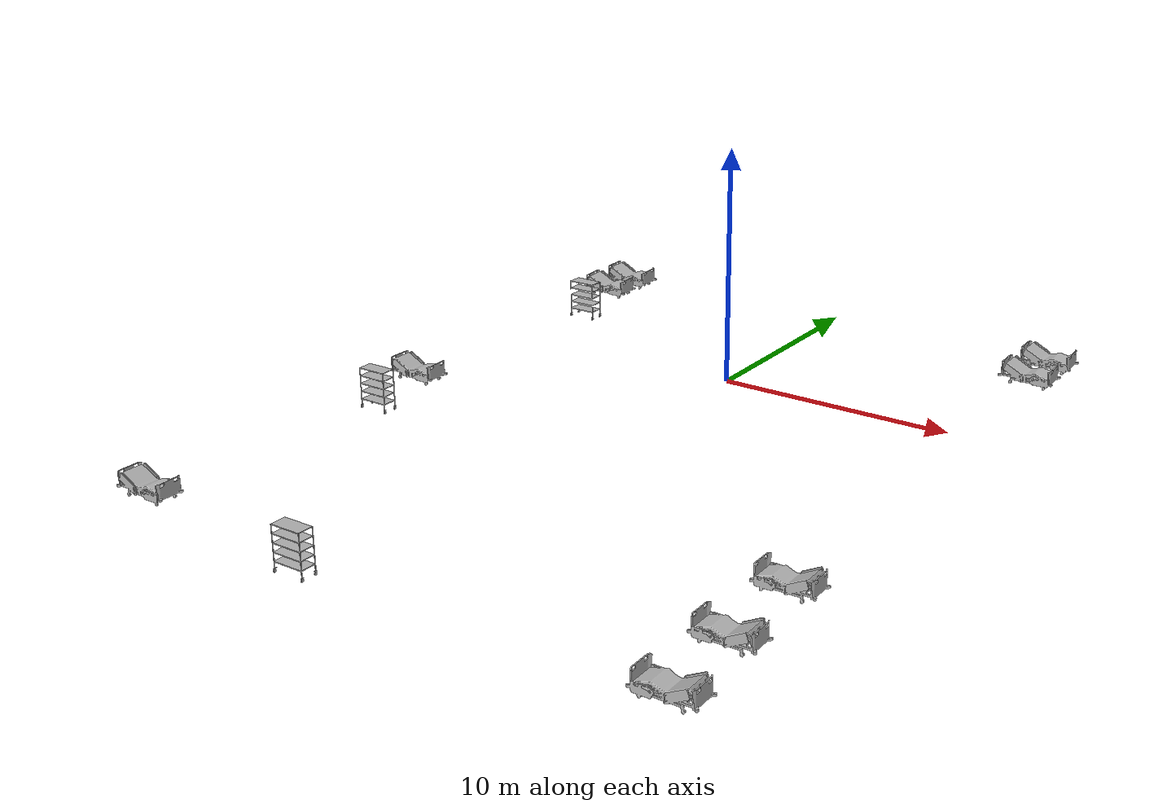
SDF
<sdf version="1.7">
 <world name="world">
  <gravity>0 0 -9.8</gravity>
  <physics name="default_physics" default="0" type="ode">
   <max_step_size>0.001</max_step_size>
   <real_time_factor>1</real_time_factor>
   <real_time_update_rate>1000</real_time_update_rate>
  </physics>
  <model name="CGMClassic_1">
   <frame name="CGMClassic::__model__" attached_to="CGMClassic::body">
    <pose relative_to="__model__">0 0 0 0 -0 0</pose>
   </frame>
   <static>1</static>
   <link name="CGMClassic::body">
    <pose relative_to="CGMClassic::__model__">0 0 0 0 -0 0</pose>
    <visual name="visual">
     <geometry>
      <mesh><uri>model://CGMClassic/meshes/CGMClassic.obj</uri><scale>0.01 0.01 0.01</scale></mesh>
     </geometry>
    </visual>
    <collision name="collision">
     <geometry>
      <mesh><uri>model://CGMClassic/meshes/CGMClassic.obj</uri><scale>0.01 0.01 0.01</scale></mesh>
     </geometry>
    </collision>
   </link>
   <pose>11.1777 -18.4129 0 0 0 -1.5656</pose>
  </model>
  <model name="CGMClassic_2">
   <frame name="CGMClassic::__model__" attached_to="CGMClassic::body">
    <pose relative_to="__model__">0 0 0 0 -0 0</pose>
   </frame>
   <static>1</static>
   <link name="CGMClassic::body">
    <pose relative_to="CGMClassic::__model__">0 0 0 0 -0 0</pose>
    <visual name="visual">
     <geometry>
      <mesh><uri>model://CGMClassic/meshes/CGMClassic.obj</uri><scale>0.01 0.01 0.01</scale></mesh>
     </geometry>
    </visual>
    <collision name="collision">
     <geometry>
      <mesh><uri>model://CGMClassic/meshes/CGMClassic.obj</uri><scale>0.01 0.01 0.01</scale></mesh>
     </geometry>
    </collision>
   </link>
   <pose>11.1179 -14.6493 0 0 0 -1.5656</pose>
  </model>
  <model name="CGMClassic_3">
   <frame name="CGMClassic::__model__" attached_to="CGMClassic::body">
    <pose relative_to="__model__">0 0 0 0 -0 0</pose>
   </frame>
   <static>1</static>
   <link name="CGMClassic::body">
    <pose relative_to="CGMClassic::__model__">0 0 0 0 -0 0</pose>
    <visual name="visual">
     <geometry>
      <mesh><uri>model://CGMClassic/meshes/CGMClassic.obj</uri><scale>0.01 0.01 0.01</scale></mesh>
     </geometry>
    </visual>
    <collision name="collision">
     <geometry>
      <mesh><uri>model://CGMClassic/meshes/CGMClassic.obj</uri><scale>0.01 0.01 0.01</scale></mesh>
     </geometry>
    </collision>
   </link>
   <pose>-11.2304 -21.1134 0 0 -0 1.56641</pose>
  </model>
  <model name="CGMClassic_4">
   <frame name="CGMClassic::__model__" attached_to="CGMClassic::body">
    <pose relative_to="__model__">0 0 0 0 -0 0</pose>
   </frame>
   <static>1</static>
   <link name="CGMClassic::body">
    <pose relative_to="CGMClassic::__model__">0 0 0 0 -0 0</pose>
    <visual name="visual">
     <geometry>
      <mesh><uri>model://CGMClassic/meshes/CGMClassic.obj</uri><scale>0.01 0.01 0.01</scale></mesh>
     </geometry>
    </visual>
    <collision name="collision">
     <geometry>
      <mesh><uri>model://CGMClassic/meshes/CGMClassic.obj</uri><scale>0.01 0.01 0.01</scale></mesh>
     </geometry>
    </collision>
   </link>
   <pose>-11.0878 -7.00992 0 0 -0 1.56296</pose>
  </model>
  <model name="CGMClassic_5">
   <frame name="CGMClassic::__model__" attached_to="CGMClassic::body">
    <pose relative_to="__model__">0 0 0 0 -0 0</pose>
   </frame>
   <static>1</static>
   <link name="CGMClassic::body">
    <pose relative_to="CGMClassic::__model__">0 0 0 0 -0 0</pose>
    <visual name="visual">
     <geometry>
      <mesh><uri>model://CGMClassic/meshes/CGMClassic.obj</uri><scale>0.01 0.01 0.01</scale></mesh>
     </geometry>
    </visual>
    <collision name="collision">
     <geometry>
      <mesh><uri>model://CGMClassic/meshes/CGMClassic.obj</uri><scale>0.01 0.01 0.01</scale></mesh>
     </geometry>
    </collision>
   </link>
   <pose>-11.0106 8.9505 -0.008203 0.0004 -0.035019 1.56285</pose>
  </model>
  <model name="CGMClassic_6">
   <frame name="CGMClassic::__model__" attached_to="CGMClassic::body">
    <pose relative_to="__model__">0 0 0 0 -0 0</pose>
   </frame>
   <static>1</static>
   <link name="CGMClassic::body">
    <pose relative_to="CGMClassic::__model__">0 0 0 0 -0 0</pose>
    <visual name="visual">
     <geometry>
      <mesh><uri>model://CGMClassic/meshes/CGMClassic.obj</uri><scale>0.01 0.01 0.01</scale></mesh>
     </geometry>
    </visual>
    <collision name="collision">
     <geometry>
      <mesh><uri>model://CGMClassic/meshes/CGMClassic.obj</uri><scale>0.01 0.01 0.01</scale></mesh>
     </geometry>
    </collision>
   </link>
   <pose>-11.025 7.10335 0 0 -0.035021 1.57427</pose>
  </model>
  <model name="StorageRack_2">
   <frame name="StorageRack::__model__" attached_to="StorageRack::link">
    <pose relative_to="__model__">0 0 0 0 -0 0</pose>
   </frame>
   <link name="StorageRack::link">
    <pose relative_to="StorageRack::__model__">0 0 0 0 -0 0</pose>
    <visual name="visual">
     <geometry><mesh><uri>model://StorageRack/meshes/StorageRack.obj</uri></mesh></geometry>
    </visual>
    <collision name="collision">
     <geometry><mesh><uri>model://StorageRack/meshes/StorageRack.obj</uri></mesh></geometry>
    </collision>
    <inertial>
     <inertia><ixx>1</ixx><ixy>0</ixy><ixz>0</ixz><iyy>1</iyy><iyz>0</iyz><izz>1</izz></inertia>
     <mass>1</mass>
    </inertial>
   </link>
   <pose>-2.69866 -22.4178 -2e-06 0 3e-06 0</pose>
  </model>
  <model name="CGMClassic_7">
   <frame name="CGMClassic::__model__" attached_to="CGMClassic::body">
    <pose relative_to="__model__">0 0 0 0 -0 0</pose>
   </frame>
   <static>1</static>
   <link name="CGMClassic::body">
    <pose relative_to="CGMClassic::__model__">0 0 0 0 -0 0</pose>
    <visual name="visual">
     <geometry>
      <mesh><uri>model://CGMClassic/meshes/CGMClassic.obj</uri><scale>0.01 0.01 0.01</scale></mesh>
     </geometry>
    </visual>
    <collision name="collision">
     <geometry>
      <mesh><uri>model://CGMClassic/meshes/CGMClassic.obj</uri><scale>0.01 0.01 0.01</scale></mesh>
     </geometry>
    </collision>
   </link>
   <pose>10.6166 9.06291 -0.008203 0.0004 -0.035019 1.56285</pose>
  </model>
  <model name="CGMClassic_8">
   <frame name="CGMClassic::__model__" attached_to="CGMClassic::body">
    <pose relative_to="__model__">0 0 0 0 -0 0</pose>
   </frame>
   <static>1</static>
   <link name="CGMClassic::body">
    <pose relative_to="CGMClassic::__model__">0 0 0 0 -0 0</pose>
    <visual name="visual">
     <geometry>
      <mesh><uri>model://CGMClassic/meshes/CGMClassic.obj</uri><scale>0.01 0.01 0.01</scale></mesh>
     </geometry>
    </visual>
    <collision name="collision">
     <geometry>
      <mesh><uri>model://CGMClassic/meshes/CGMClassic.obj</uri><scale>0.01 0.01 0.01</scale></mesh>
     </geometry>
    </collision>
   </link>
   <pose>10.6006 6.90956 -0.008203 0.0004 -0.035019 1.56285</pose>
  </model>
  <model name="CGMClassic_9">
   <frame name="CGMClassic::__model__" attached_to="CGMClassic::body">
    <pose relative_to="__model__">0 0 0 0 -0 0</pose>
   </frame>
   <static>1</static>
   <link name="CGMClassic::body">
    <pose relative_to="CGMClassic::__model__">0 0 0 0 -0 0</pose>
    <visual name="visual">
     <geometry>
      <mesh><uri>model://CGMClassic/meshes/CGMClassic.obj</uri><scale>0.01 0.01 0.01</scale></mesh>
     </geometry>
    </visual>
    <collision name="collision">
     <geometry>
      <mesh><uri>model://CGMClassic/meshes/CGMClassic.obj</uri><scale>0.01 0.01 0.01</scale></mesh>
     </geometry>
    </collision>
   </link>
   <pose>11.3613 -21.8867 0 0 0 -1.5656</pose>
  </model>
  <model name="StorageRack_3">
   <frame name="StorageRack::__model__" attached_to="StorageRack::link">
    <pose relative_to="__model__">0 0 0 0 -0 0</pose>
   </frame>
   <link name="StorageRack::link">
    <pose relative_to="StorageRack::__model__">0 0 0 0 -0 0</pose>
    <visual name="visual">
     <geometry><mesh><uri>model://StorageRack/meshes/StorageRack.obj</uri></mesh></geometry>
    </visual>
    <collision name="collision">
     <geometry><mesh><uri>model://StorageRack/meshes/StorageRack.obj</uri></mesh></geometry>
    </collision>
    <inertial>
     <inertia><ixx>1</ixx><ixy>0</ixy><ixz>0</ixz><iyy>1</iyy><iyz>0</iyz><izz>1</izz></inertia>
     <mass>1</mass>
    </inertial>
   </link>
   <pose>-10.1178 -10.4694 -1e-06 0 -2e-06 0</pose>
  </model>
  <model name="StorageRack_4">
   <frame name="StorageRack::__model__" attached_to="StorageRack::link">
    <pose relative_to="__model__">0 0 0 0 -0 0</pose>
   </frame>
   <link name="StorageRack::link">
    <pose relative_to="StorageRack::__model__">0 0 0 0 -0 0</pose>
    <visual name="visual">
     <geometry><mesh><uri>model://StorageRack/meshes/StorageRack.obj</uri></mesh></geometry>
    </visual>
    <collision name="collision">
     <geometry><mesh><uri>model://StorageRack/meshes/StorageRack.obj</uri></mesh></geometry>
    </collision>
    <inertial>
     <inertia><ixx>1</ixx><ixy>0</ixy><ixz>0</ixz><iyy>1</iyy><iyz>0</iyz><izz>1</izz></inertia>
     <mass>1</mass>
    </inertial>
   </link>
   <pose>-9.91557 3.5644 -1e-06 -1e-06 -1e-06 -0.000273</pose>
  </model>
  <light name="ceiling_light_0" type="spot">
   <pose>-0.194533 13.8034 2.8 0 -0 0</pose>
   <diffuse>0.494118 0.494118 0.494118 1</diffuse>
   <specular>0.0941176 0.0941176 0.0941176 1</specular>
   <direction>0 0 -1</direction>
   <attenuation>
    <range>20</range>
    <constant>0.8</constant>
    <linear>0.1</linear>
    <quadratic>0.001</quadratic>
   </attenuation>
   <cast_shadows>0</cast_shadows>
   <spot><inner_angle>1</inner_angle><outer_angle>2.5</outer_angle><falloff>1</falloff></spot>
  </light>
  <light name="ceiling_light_1" type="spot">
   <pose>6.30005 8.9551 2.8 0 -0 0</pose>
   <diffuse>0.494118 0.494118 0.494118 1</diffuse>
   <specular>0.0941176 0.0941176 0.0941176 1</specular>
   <direction>0 0 -1</direction>
   <attenuation>
    <range>20</range>
    <constant>0.8</constant>
    <linear>0.1</linear>
    <quadratic>0.001</quadratic>
   </attenuation>
   <cast_shadows>0</cast_shadows>
   <spot><inner_angle>1</inner_angle><outer_angle>2.5</outer_angle><falloff>1</falloff></spot>
  </light>
  <light name="ceiling_light_2" type="spot">
   <pose>0.212387 2.1354 2.8 0 -0 0</pose>
   <diffuse>0.494118 0.494118 0.494118 1</diffuse>
   <specular>0.0941176 0.0941176 0.0941176 1</specular>
   <direction>0 0 -1</direction>
   <attenuation>
    <range>20</range>
    <constant>0.8</constant>
    <linear>0.1</linear>
    <quadratic>0.001</quadratic>
   </attenuation>
   <cast_shadows>0</cast_shadows>
   <spot><inner_angle>1</inner_angle><outer_angle>2.5</outer_angle><falloff>1</falloff></spot>
  </light>
  <light name="ceiling_light_3" type="spot">
   <pose>-5.81057 7.18327 2.8 0 -0 0</pose>
   <diffuse>0.494118 0.494118 0.494118 1</diffuse>
   <specular>0.0941176 0.0941176 0.0941176 1</specular>
   <direction>0 0 -1</direction>
   <attenuation>
    <range>20</range>
    <constant>0.8</constant>
    <linear>0.1</linear>
    <quadratic>0.001</quadratic>
   </attenuation>
   <cast_shadows>0</cast_shadows>
   <spot><inner_angle>1</inner_angle><outer_angle>2.5</outer_angle><falloff>1</falloff></spot>
  </light>
  <light name="ceiling_light_4" type="spot">
   <pose>-4.54396 -3.67312 2.8 0 -0 0</pose>
   <diffuse>0.494118 0.494118 0.494118 1</diffuse>
   <specular>0.0941176 0.0941176 0.0941176 1</specular>
   <direction>0 0 -1</direction>
   <attenuation>
    <range>20</range>
    <constant>0.8</constant>
    <linear>0.1</linear>
    <quadratic>0.001</quadratic>
   </attenuation>
   <cast_shadows>0</cast_shadows>
   <spot><inner_angle>1</inner_angle><outer_angle>2.5</outer_angle><falloff>1</falloff></spot>
  </light>
  <light name="ceiling_light_5" type="spot">
   <pose>-4.37087 -14.4782 2.8 0 -0 0</pose>
   <diffuse>0.494118 0.494118 0.494118 1</diffuse>
   <specular>0.0941176 0.0941176 0.0941176 1</specular>
   <direction>0 0 -1</direction>
   <attenuation>
    <range>20</range>
    <constant>0.8</constant>
    <linear>0.1</linear>
    <quadratic>0.001</quadratic>
   </attenuation>
   <cast_shadows>0</cast_shadows>
   <spot><inner_angle>1</inner_angle><outer_angle>2.5</outer_angle><falloff>1</falloff></spot>
  </light>
  <light name="ceiling_light_6" type="spot">
   <pose>-4.39457 -24.5382 2.8 0 -0 0</pose>
   <diffuse>0.494118 0.494118 0.494118 1</diffuse>
   <specular>0.0941176 0.0941176 0.0941176 1</specular>
   <direction>0 0 -1</direction>
   <attenuation>
    <range>20</range>
    <constant>0.8</constant>
    <linear>0.1</linear>
    <quadratic>0.001</quadratic>
   </attenuation>
   <cast_shadows>0</cast_shadows>
   <spot><inner_angle>1</inner_angle><outer_angle>2.5</outer_angle><falloff>1</falloff></spot>
  </light>
  <light name="ceiling_light_7" type="spot">
   <pose>-4.89858 -33.5301 2.8 0 -0 0</pose>
   <diffuse>0.494118 0.494118 0.494118 1</diffuse>
   <specular>0.0941176 0.0941176 0.0941176 1</specular>
   <direction>0 0 -1</direction>
   <attenuation>
    <range>20</range>
    <constant>0.8</constant>
    <linear>0.1</linear>
    <quadratic>0.001</quadratic>
   </attenuation>
   <cast_shadows>0</cast_shadows>
   <spot><inner_angle>1</inner_angle><outer_angle>2.5</outer_angle><falloff>1</falloff></spot>
  </light>
  <light name="ceiling_light_8" type="spot">
   <pose>4.63967 -24.4587 2.8 0 -0 0</pose>
   <diffuse>0.494118 0.494118 0.494118 1</diffuse>
   <specular>0.0941176 0.0941176 0.0941176 1</specular>
   <direction>0 0 -1</direction>
   <attenuation>
    <range>20</range>
    <constant>0.8</constant>
    <linear>0.1</linear>
    <quadratic>0.001</quadratic>
   </attenuation>
   <cast_shadows>0</cast_shadows>
   <spot><inner_angle>1</inner_angle><outer_angle>2.5</outer_angle><falloff>1</falloff></spot>
  </light>
  <light name="ceiling_light_9" type="spot">
   <pose>4.92633 -14.3923 2.8 0 -0 0</pose>
   <diffuse>0.494118 0.494118 0.494118 1</diffuse>
   <specular>0.0941176 0.0941176 0.0941176 1</specular>
   <direction>0 0 -1</direction>
   <attenuation>
    <range>20</range>
    <constant>0.8</constant>
    <linear>0.1</linear>
    <quadratic>0.001</quadratic>
   </attenuation>
   <cast_shadows>0</cast_shadows>
   <spot><inner_angle>1</inner_angle><outer_angle>2.5</outer_angle><falloff>1</falloff></spot>
  </light>
  <light name="ceiling_light_10" type="spot">
   <pose>4.7009 -3.77715 2.8 0 -0 0</pose>
   <diffuse>0.494118 0.494118 0.494118 1</diffuse>
   <specular>0.0941176 0.0941176 0.0941176 1</specular>
   <direction>0 0 -1</direction>
   <attenuation>
    <range>20</range>
    <constant>0.8</constant>
    <linear>0.1</linear>
    <quadratic>0.001</quadratic>
   </attenuation>
   <cast_shadows>0</cast_shadows>
   <spot><inner_angle>1</inner_angle><outer_angle>2.5</outer_angle><falloff>1</falloff></spot>
  </light>
  <light name="ceiling_light_11" type="spot">
   <pose>-9.02467 14.516 2.8 0 -0 0</pose>
   <diffuse>0.494118 0.494118 0.494118 1</diffuse>
   <specular>0.0941176 0.0941176 0.0941176 1</specular>
   <direction>0 0 -1</direction>
   <attenuation>
    <range>20</range>
    <constant>0.8</constant>
    <linear>0.1</linear>
    <quadratic>0.001</quadratic>
   </attenuation>
   <cast_shadows>0</cast_shadows>
   <spot><inner_angle>1</inner_angle><outer_angle>2.5</outer_angle><falloff>1</falloff></spot>
  </light>
  <light name="ceiling_light_12" type="spot">
   <pose>9.12495 14.4234 2.8 0 -0 0</pose>
   <diffuse>0.494118 0.494118 0.494118 1</diffuse>
   <specular>0.0941176 0.0941176 0.0941176 1</specular>
   <direction>0 0 -1</direction>
   <attenuation>
    <range>20</range>
    <constant>0.8</constant>
    <linear>0.1</linear>
    <quadratic>0.001</quadratic>
   </attenuation>
   <cast_shadows>0</cast_shadows>
   <spot><inner_angle>1</inner_angle><outer_angle>2.5</outer_angle><falloff>1</falloff></spot>
  </light>
  <light name="ceiling_light_13" type="spot">
   <pose>9.49822 -5.56304 2.8 0 -0 0</pose>
   <diffuse>0.494118 0.494118 0.494118 1</diffuse>
   <specular>0.0941176 0.0941176 0.0941176 1</specular>
   <direction>0 0 -1</direction>
   <attenuation>
    <range>20</range>
    <constant>0.8</constant>
    <linear>0.1</linear>
    <quadratic>0.001</quadratic>
   </attenuation>
   <cast_shadows>0</cast_shadows>
   <spot><inner_angle>1</inner_angle><outer_angle>2.5</outer_angle><falloff>1</falloff></spot>
  </light>
  <light name="ceiling_light_14" type="spot">
   <pose>-9.46806 -4.74662 2.8 0 -0 0</pose>
   <diffuse>0.494118 0.494118 0.494118 1</diffuse>
   <specular>0.0941176 0.0941176 0.0941176 1</specular>
   <direction>0 0 -1</direction>
   <attenuation>
    <range>20</range>
    <constant>0.8</constant>
    <linear>0.1</linear>
    <quadratic>0.001</quadratic>
   </attenuation>
   <cast_shadows>0</cast_shadows>
   <spot><inner_angle>1</inner_angle><outer_angle>2.5</outer_angle><falloff>1</falloff></spot>
  </light>
  <light name="ceiling_light_15" type="spot">
   <pose>-9.46885 -19.0778 2.8 0 -0 0</pose>
   <diffuse>0.494118 0.494118 0.494118 1</diffuse>
   <specular>0.0901961 0.0901961 0.0901961 1</specular>
   <direction>0 0 -1</direction>
   <attenuation>
    <range>20</range>
    <constant>0.8</constant>
    <linear>0.1</linear>
    <quadratic>0.001</quadratic>
   </attenuation>
   <cast_shadows>0</cast_shadows>
   <spot><inner_angle>1</inner_angle><outer_angle>2.5</outer_angle><falloff>1</falloff></spot>
  </light>
  <light name="ceiling_light_16" type="spot">
   <pose>-9.42207 -28.0708 2.8 0 -0 0</pose>
   <diffuse>0.494118 0.494118 0.494118 1</diffuse>
   <specular>0.0901961 0.0901961 0.0901961 1</specular>
   <direction>0 0 -1</direction>
   <attenuation>
    <range>20</range>
    <constant>0.8</constant>
    <linear>0.1</linear>
    <quadratic>0.001</quadratic>
   </attenuation>
   <cast_shadows>0</cast_shadows>
   <spot><inner_angle>1</inner_angle><outer_angle>2.5</outer_angle><falloff>1</falloff></spot>
  </light>
  <light name="ceiling_light_17" type="spot">
   <pose>1.66302 -11.4026 2.8 0 -0 0</pose>
   <diffuse>0.494118 0.494118 0.494118 1</diffuse>
   <specular>0.0901961 0.0901961 0.0901961 1</specular>
   <direction>0 0 -1</direction>
   <attenuation>
    <range>20</range>
    <constant>0.8</constant>
    <linear>0.1</linear>
    <quadratic>0.001</quadratic>
   </attenuation>
   <cast_shadows>0</cast_shadows>
   <spot><inner_angle>1</inner_angle><outer_angle>2.5</outer_angle><falloff>1</falloff></spot>
  </light>
  <light name="ceiling_light_18" type="spot">
   <pose>-1.64839 -19.4418 2.8 0 -0 0</pose>
   <diffuse>0.494118 0.494118 0.494118 1</diffuse>
   <specular>0.0901961 0.0901961 0.0901961 1</specular>
   <direction>0 0 -1</direction>
   <attenuation>
    <range>20</range>
    <constant>0.8</constant>
    <linear>0.1</linear>
    <quadratic>0.001</quadratic>
   </attenuation>
   <cast_shadows>0</cast_shadows>
   <spot><inner_angle>1</inner_angle><outer_angle>2.5</outer_angle><falloff>1</falloff></spot>
  </light>
  <light name="ceiling_light_19" type="spot">
   <pose>1.85793 -19.3856 2.8 0 -0 0</pose>
   <diffuse>0.494118 0.494118 0.494118 1</diffuse>
   <specular>0.0901961 0.0901961 0.0901961 1</specular>
   <direction>0 0 -1</direction>
   <attenuation>
    <range>20</range>
    <constant>0.8</constant>
    <linear>0.1</linear>
    <quadratic>0.001</quadratic>
   </attenuation>
   <cast_shadows>0</cast_shadows>
   <spot><inner_angle>1</inner_angle><outer_angle>2.5</outer_angle><falloff>1</falloff></spot>
  </light>
  <light name="ceiling_light_20" type="spot">
   <pose>-3.74086 -4.44142 2.8 0 -0 0</pose>
   <diffuse>0.494118 0.494118 0.494118 1</diffuse>
   <specular>0.0901961 0.0901961 0.0901961 1</specular>
   <direction>0 0 -1</direction>
   <attenuation>
    <range>20</range>
    <constant>0.8</constant>
    <linear>0.1</linear>
    <quadratic>0.001</quadratic>
   </attenuation>
   <cast_shadows>0</cast_shadows>
   <spot><inner_angle>1</inner_angle><outer_angle>2.5</outer_angle><falloff>1</falloff></spot>
  </light>
  <light name="ceiling_light_21" type="spot">
   <pose>-1.7167 -11.3151 2.8 0 -0 0</pose>
   <diffuse>0.494118 0.494118 0.494118 1</diffuse>
   <specular>0.0901961 0.0901961 0.0901961 1</specular>
   <direction>0 0 -1</direction>
   <attenuation>
    <range>20</range>
    <constant>0.8</constant>
    <linear>0.1</linear>
    <quadratic>0.001</quadratic>
   </attenuation>
   <cast_shadows>0</cast_shadows>
   <spot><inner_angle>1</inner_angle><outer_angle>2.5</outer_angle><falloff>1</falloff></spot>
  </light>
  <light name="ceiling_light_22" type="spot">
   <pose>-9.60933 -14.3792 2.8 0 -0 0</pose>
   <diffuse>0.494118 0.494118 0.494118 1</diffuse>
   <specular>0.0901961 0.0901961 0.0901961 1</specular>
   <direction>0 0 -1</direction>
   <attenuation>
    <range>20</range>
    <constant>0.8</constant>
    <linear>0.1</linear>
    <quadratic>0.001</quadratic>
   </attenuation>
   <cast_shadows>0</cast_shadows>
   <spot><inner_angle>1</inner_angle><outer_angle>2.5</outer_angle><falloff>1</falloff></spot>
  </light>
  <light name="ceiling_light_23" type="spot">
   <pose>-8.89647 0.199867 2.8 0 -0 0</pose>
   <diffuse>0.494118 0.494118 0.494118 1</diffuse>
   <specular>0.0901961 0.0901961 0.0901961 1</specular>
   <direction>0 0 -1</direction>
   <attenuation>
    <range>20</range>
    <constant>0.8</constant>
    <linear>0.1</linear>
    <quadratic>0.001</quadratic>
   </attenuation>
   <cast_shadows>0</cast_shadows>
   <spot><inner_angle>1</inner_angle><outer_angle>2.5</outer_angle><falloff>1</falloff></spot>
  </light>
  <light name="ceiling_light_24" type="spot">
   <pose>8.80325 1.99908 2.8 0 -0 0</pose>
   <diffuse>0.494118 0.494118 0.494118 1</diffuse>
   <specular>0.0901961 0.0901961 0.0901961 1</specular>
   <direction>0 0 -1</direction>
   <attenuation>
    <range>20</range>
    <constant>0.8</constant>
    <linear>0.1</linear>
    <quadratic>0.001</quadratic>
   </attenuation>
   <cast_shadows>0</cast_shadows>
   <spot><inner_angle>1</inner_angle><outer_angle>2.5</outer_angle><falloff>1</falloff></spot>
  </light>
  <light name="ceiling_light_25" type="spot">
   <pose>10.6153 10.2443 2.8 0 -0 0</pose>
   <diffuse>0.494118 0.494118 0.494118 1</diffuse>
   <specular>0.0941176 0.0941176 0.0941176 1</specular>
   <direction>0 0 -1</direction>
   <attenuation>
    <range>20</range>
    <constant>0.8</constant>
    <linear>0.1</linear>
    <quadratic>0.001</quadratic>
   </attenuation>
   <cast_shadows>0</cast_shadows>
   <spot><inner_angle>1</inner_angle><outer_angle>2.5</outer_angle><falloff>1</falloff></spot>
  </light>
  <light name="ceiling_light_26" type="spot">
   <pose>10.7071 5.95677 2.8 0 -0 0</pose>
   <diffuse>0.494118 0.494118 0.494118 1</diffuse>
   <specular>0.0941176 0.0941176 0.0941176 1</specular>
   <direction>0 0 -1</direction>
   <attenuation>
    <range>20</range>
    <constant>0.8</constant>
    <linear>0.1</linear>
    <quadratic>0.001</quadratic>
   </attenuation>
   <cast_shadows>0</cast_shadows>
   <spot><inner_angle>1</inner_angle><outer_angle>2.5</outer_angle><falloff>1</falloff></spot>
  </light>
  <light name="ceiling_light_27" type="spot">
   <pose>-10.6266 10.4097 2.8 0 -0 0</pose>
   <diffuse>0.494118 0.494118 0.494118 1</diffuse>
   <specular>0.0941176 0.0941176 0.0941176 1</specular>
   <direction>0 0 -1</direction>
   <attenuation>
    <range>20</range>
    <constant>0.8</constant>
    <linear>0.1</linear>
    <quadratic>0.001</quadratic>
   </attenuation>
   <cast_shadows>0</cast_shadows>
   <spot><inner_angle>1</inner_angle><outer_angle>2.5</outer_angle><falloff>1</falloff></spot>
  </light>
  <light name="ceiling_light_28" type="spot">
   <pose>-10.7712 6.05323 2.8 0 -0 0</pose>
   <diffuse>0.494118 0.494118 0.494118 1</diffuse>
   <specular>0.0941176 0.0941176 0.0941176 1</specular>
   <direction>0 0 -1</direction>
   <attenuation>
    <range>20</range>
    <constant>0.8</constant>
    <linear>0.1</linear>
    <quadratic>0.001</quadratic>
   </attenuation>
   <cast_shadows>0</cast_shadows>
   <spot><inner_angle>1</inner_angle><outer_angle>2.5</outer_angle><falloff>1</falloff></spot>
  </light>
  <light name="ceiling_light_29" type="spot">
   <pose>-9.64585 -30.5079 2.8 0 -0 0</pose>
   <diffuse>0.494118 0.494118 0.494118 1</diffuse>
   <specular>0.0941176 0.0941176 0.0941176 1</specular>
   <direction>0 0 -1</direction>
   <attenuation>
    <range>20</range>
    <constant>0.8</constant>
    <linear>0.1</linear>
    <quadratic>0.001</quadratic>
   </attenuation>
   <cast_shadows>0</cast_shadows>
   <spot><inner_angle>1</inner_angle><outer_angle>2.5</outer_angle><falloff>1</falloff></spot>
  </light>
  <light name="ceiling_light_30" type="spot">
   <pose>-11.9169 -24.6051 2.8 0 -0 0</pose>
   <diffuse>0.494118 0.494118 0.494118 1</diffuse>
   <specular>0.0941176 0.0941176 0.0941176 1</specular>
   <direction>0 0 -1</direction>
   <attenuation>
    <range>20</range>
    <constant>0.8</constant>
    <linear>0.1</linear>
    <quadratic>0.001</quadratic>
   </attenuation>
   <cast_shadows>0</cast_shadows>
   <spot><inner_angle>1</inner_angle><outer_angle>2.5</outer_angle><falloff>1</falloff></spot>
  </light>
  <light name="ceiling_light_31" type="spot">
   <pose>-4.29701 11.4852 2.8 0 -0 0</pose>
   <diffuse>0.494118 0.494118 0.494118 1</diffuse>
   <specular>0.0901961 0.0901961 0.0901961 1</specular>
   <direction>0 0 -1</direction>
   <attenuation>
    <range>20</range>
    <constant>0.8</constant>
    <linear>0.1</linear>
    <quadratic>0.001</quadratic>
   </attenuation>
   <cast_shadows>0</cast_shadows>
   <spot><inner_angle>1</inner_angle><outer_angle>2.5</outer_angle><falloff>1</falloff></spot>
  </light>
  <light name="ceiling_light_32" type="spot">
   <pose>3.41329 12.0406 2.8 0 -0 0</pose>
   <diffuse>0.494118 0.494118 0.494118 1</diffuse>
   <specular>0.0901961 0.0901961 0.0901961 1</specular>
   <direction>0 0 -1</direction>
   <attenuation>
    <range>20</range>
    <constant>0.8</constant>
    <linear>0.1</linear>
    <quadratic>0.001</quadratic>
   </attenuation>
   <cast_shadows>0</cast_shadows>
   <spot><inner_angle>1</inner_angle><outer_angle>2.5</outer_angle><falloff>1</falloff></spot>
  </light>
  <light name="ceiling_light_33" type="spot">
   <pose>-0.181496 7.28878 2.8 0 -0 0</pose>
   <diffuse>0.494118 0.494118 0.494118 1</diffuse>
   <specular>0.0901961 0.0901961 0.0901961 1</specular>
   <direction>0 0 -1</direction>
   <attenuation>
    <range>20</range>
    <constant>0.8</constant>
    <linear>0.1</linear>
    <quadratic>0.001</quadratic>
   </attenuation>
   <cast_shadows>0</cast_shadows>
   <spot><inner_angle>1</inner_angle><outer_angle>2.5</outer_angle><falloff>1</falloff></spot>
  </light>
  <magnetic_field>6e-06 2.3e-05 -4.2e-05</magnetic_field>
  <atmosphere type="adiabatic"/>
  <scene><ambient>0.4 0.4 0.4 1</ambient><background>0.7 0.7 0.7 1</background><shadows>1</shadows></scene>
  <spherical_coordinates>
   <surface_model>EARTH_WGS84</surface_model>
   <latitude_deg>0</latitude_deg>
   <longitude_deg>0</longitude_deg>
   <elevation>0</elevation>
   <heading_deg>0</heading_deg>
  </spherical_coordinates>
 </world>
</sdf>
